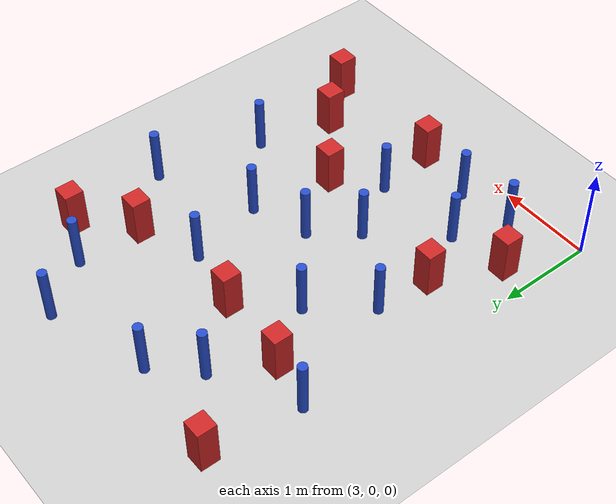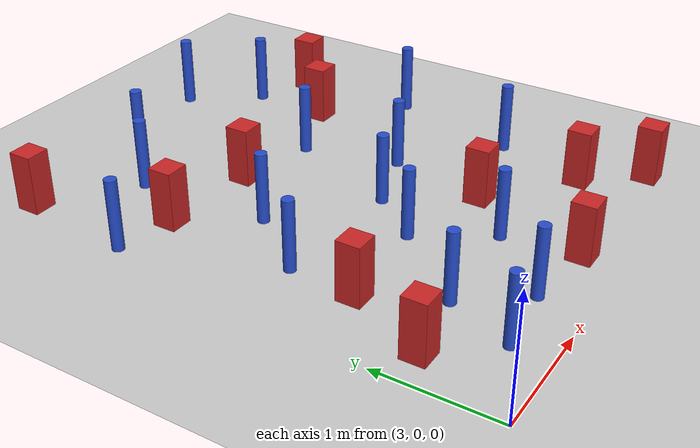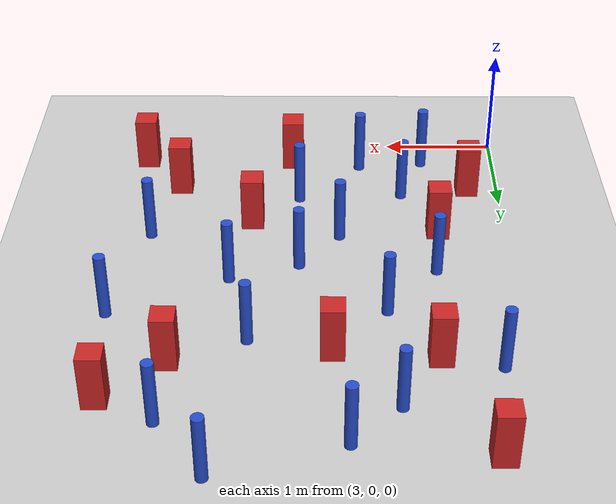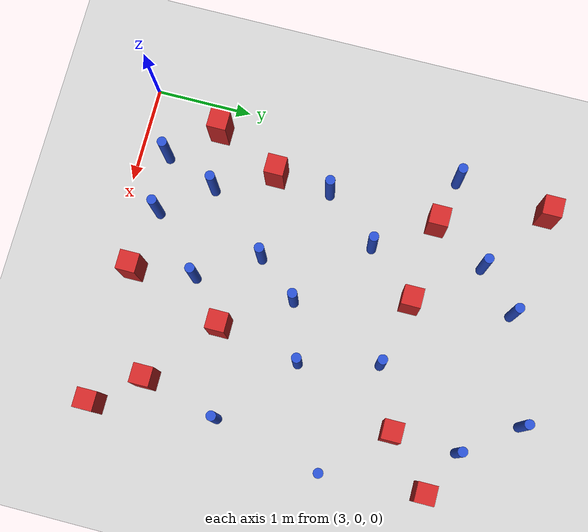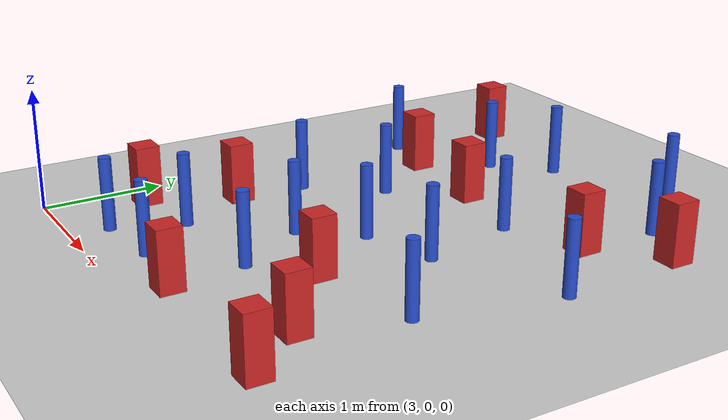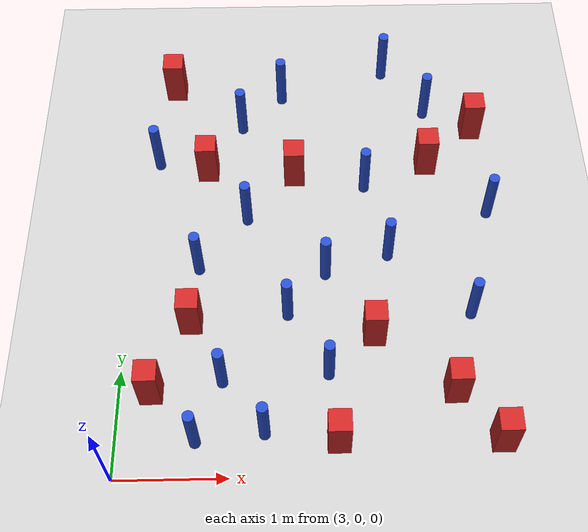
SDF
<sdf version="1.6">
 <world name="default">
  <model name="ground_plane">
   <static>1</static>
   <link name="link">
    <collision name="collision">
     <geometry><plane><normal>0 0 1</normal><size>100 100</size></plane></geometry>
     <surface><friction><ode><mu>100</mu><mu2>50</mu2></ode></friction></surface>
    </collision>
    <visual name="visual">
     <cast_shadows>0</cast_shadows>
     <geometry><plane><normal>0 0 1</normal><size>100 100</size></plane></geometry>
     <material>
      <ambient>1.0 1.0 1.0 1.0</ambient>
      <diffuse>0.8 0.8 0.8 1.0</diffuse>
      <specular>0.01 0.01 0.01 1.000000</specular>
     </material>
    </visual>
   </link>
  </model>
  <model name="pole_obstacle22">
   <static>true</static>
   <pose>4.44462462804 4.13934185821 -9.47619616065e-06 5.49618799737e-07 2.36310414037e-07 -1.55090534814e-07</pose>
   <link name="link">
    <pose>0 0 0.3 0 -0 0</pose>
    <inertial>
     <mass>1</mass>
     <inertia><ixx>0.145833</ixx><ixy>0</ixy><ixz>0</ixz><iyy>0.145833</iyy><iyz>0</iyz><izz>0.125</izz></inertia>
    </inertial>
    <collision name="collision">
     <geometry><cylinder><radius>0.05</radius><length>.6</length></cylinder></geometry>
    </collision>
    <visual name="visual">
     <geometry><cylinder><radius>0.05</radius><length>.6</length></cylinder></geometry>
     <material>
      <script><name>Gazebo/Blue</name><uri>file://media/materials/scripts/gazebo.material</uri></script>
     </material>
    </visual>
   </link>
  </model>
  <model name="pole_obstacle26">
   <static>true</static>
   <pose>5.51467032966 4.46958192493 -9.47619616065e-06 5.49618799737e-07 2.36310414037e-07 -1.55090534814e-07</pose>
   <link name="link">
    <pose>0 0 0.3 0 -0 0</pose>
    <inertial>
     <mass>1</mass>
     <inertia><ixx>0.145833</ixx><ixy>0</ixy><ixz>0</ixz><iyy>0.145833</iyy><iyz>0</iyz><izz>0.125</izz></inertia>
    </inertial>
    <collision name="collision">
     <geometry><cylinder><radius>0.05</radius><length>.6</length></cylinder></geometry>
    </collision>
    <visual name="visual">
     <geometry><cylinder><radius>0.05</radius><length>.6</length></cylinder></geometry>
     <material>
      <script><name>Gazebo/Blue</name><uri>file://media/materials/scripts/gazebo.material</uri></script>
     </material>
    </visual>
   </link>
  </model>
  <model name="pole_obstacle33">
   <static>true</static>
   <pose>5.92267457255 3.91372418321 -9.47619616065e-06 5.49618799738e-07 2.36310414051e-07 -1.55090534805e-07</pose>
   <link name="link">
    <pose>0 0 0.3 0 -0 0</pose>
    <inertial>
     <mass>1</mass>
     <inertia><ixx>0.145833</ixx><ixy>0</ixy><ixz>0</ixz><iyy>0.145833</iyy><iyz>0</iyz><izz>0.125</izz></inertia>
    </inertial>
    <collision name="collision">
     <geometry><cylinder><radius>0.05</radius><length>.6</length></cylinder></geometry>
    </collision>
    <visual name="visual">
     <geometry><cylinder><radius>0.05</radius><length>.6</length></cylinder></geometry>
     <material>
      <script><name>Gazebo/Blue</name><uri>file://media/materials/scripts/gazebo.material</uri></script>
     </material>
    </visual>
   </link>
  </model>
  <model name="pole_obstacle39">
   <static>true</static>
   <pose>4.0408346083 3.74370026757 -9.47619616065e-06 5.49618799737e-07 2.36310414057e-07 -1.55090534802e-07</pose>
   <link name="link">
    <pose>0 0 0.3 0 -0 0</pose>
    <inertial>
     <mass>1</mass>
     <inertia><ixx>0.145833</ixx><ixy>0</ixy><ixz>0</ixz><iyy>0.145833</iyy><iyz>0</iyz><izz>0.125</izz></inertia>
    </inertial>
    <collision name="collision">
     <geometry><cylinder><radius>0.05</radius><length>.6</length></cylinder></geometry>
    </collision>
    <visual name="visual">
     <geometry><cylinder><radius>0.05</radius><length>.6</length></cylinder></geometry>
     <material>
      <script><name>Gazebo/Blue</name><uri>file://media/materials/scripts/gazebo.material</uri></script>
     </material>
    </visual>
   </link>
  </model>
  <model name="square_post_obstacle43">
   <static>true</static>
   <pose>4.56991591105 3.11451603777 -6.11067671241e-07 -5.50515727128e-06 -8.79689657224e-07 2.37013304536e-05</pose>
   <link name="link">
    <pose>0 0 0.25 0 -0 0</pose>
    <inertial>
     <mass>100</mass>
     <inertia>
      <ixx>0.166667</ixx>
      <ixy>0</ixy>
      <ixz>0</ixz>
      <iyy>0.166667</iyy>
      <iyz>0</iyz>
      <izz>0.166667</izz>
     </inertia>
    </inertial>
    <collision name="collision"><geometry><box><size>.2 .2 .5</size></box></geometry></collision>
    <visual name="visual">
     <geometry><box><size>.2 .2 .5</size></box></geometry>
     <material>
      <script><name>Gazebo/Red</name><uri>file://media/materials/scripts/gazebo.material</uri></script>
     </material>
    </visual>
   </link>
  </model>
  <model name="square_post_obstacle47">
   <static>true</static>
   <pose>3.29083783248 0.779698672966 -6.11067671241e-07 -5.50515727128e-06 -8.79689657224e-07 2.37013304536e-05</pose>
   <link name="link">
    <pose>0 0 0.25 0 -0 0</pose>
    <inertial>
     <mass>100</mass>
     <inertia>
      <ixx>0.166667</ixx>
      <ixy>0</ixy>
      <ixz>0</ixz>
      <iyy>0.166667</iyy>
      <iyz>0</iyz>
      <izz>0.166667</izz>
     </inertia>
    </inertial>
    <collision name="collision"><geometry><box><size>.2 .2 .5</size></box></geometry></collision>
    <visual name="visual">
     <geometry><box><size>.2 .2 .5</size></box></geometry>
     <material>
      <script><name>Gazebo/Red</name><uri>file://media/materials/scripts/gazebo.material</uri></script>
     </material>
    </visual>
   </link>
  </model>
  <model name="square_post_obstacle72">
   <static>true</static>
   <pose>4.92912573434 0.302919939772 -6.11067671241e-07 -5.50515727128e-06 -8.79689657224e-07 2.37013304536e-05</pose>
   <link name="link">
    <pose>0 0 0.25 0 -0 0</pose>
    <inertial>
     <mass>100</mass>
     <inertia>
      <ixx>0.166667</ixx>
      <ixy>0</ixy>
      <ixz>0</ixz>
      <iyy>0.166667</iyy>
      <iyz>0</iyz>
      <izz>0.166667</izz>
     </inertia>
    </inertial>
    <collision name="collision"><geometry><box><size>.2 .2 .5</size></box></geometry></collision>
    <visual name="visual">
     <geometry><box><size>.2 .2 .5</size></box></geometry>
     <material>
      <script><name>Gazebo/Red</name><uri>file://media/materials/scripts/gazebo.material</uri></script>
     </material>
    </visual>
   </link>
  </model>
  <model name="pole_obstacle80">
   <static>true</static>
   <pose>6.45289074793 2.63987264285 -9.47619616065e-06 5.49618799738e-07 2.36310414051e-07 -1.55090534805e-07</pose>
   <link name="link">
    <pose>0 0 0.3 0 -0 0</pose>
    <inertial>
     <mass>1</mass>
     <inertia><ixx>0.145833</ixx><ixy>0</ixy><ixz>0</ixz><iyy>0.145833</iyy><iyz>0</iyz><izz>0.125</izz></inertia>
    </inertial>
    <collision name="collision">
     <geometry><cylinder><radius>0.05</radius><length>.6</length></cylinder></geometry>
    </collision>
    <visual name="visual">
     <geometry><cylinder><radius>0.05</radius><length>.6</length></cylinder></geometry>
     <material>
      <script><name>Gazebo/Blue</name><uri>file://media/materials/scripts/gazebo.material</uri></script>
     </material>
    </visual>
   </link>
  </model>
  <model name="square_post_obstacle86">
   <static>true</static>
   <pose>3.70826879592 3.18764989912 -6.11067671241e-07 -5.50515727128e-06 -8.79689657224e-07 2.37013304536e-05</pose>
   <link name="link">
    <pose>0 0 0.25 0 -0 0</pose>
    <inertial>
     <mass>100</mass>
     <inertia>
      <ixx>0.166667</ixx>
      <ixy>0</ixy>
      <ixz>0</ixz>
      <iyy>0.166667</iyy>
      <iyz>0</iyz>
      <izz>0.166667</izz>
     </inertia>
    </inertial>
    <collision name="collision"><geometry><box><size>.2 .2 .5</size></box></geometry></collision>
    <visual name="visual">
     <geometry><box><size>.2 .2 .5</size></box></geometry>
     <material>
      <script><name>Gazebo/Red</name><uri>file://media/materials/scripts/gazebo.material</uri></script>
     </material>
    </visual>
   </link>
  </model>
  <model name="pole_obstacle99">
   <static>true</static>
   <pose>4.49547687015 1.53703083934 -9.47619616065e-06 5.49618799738e-07 2.36310414071e-07 -1.55090534796e-07</pose>
   <link name="link">
    <pose>0 0 0.3 0 -0 0</pose>
    <inertial>
     <mass>1</mass>
     <inertia><ixx>0.145833</ixx><ixy>0</ixy><ixz>0</ixz><iyy>0.145833</iyy><iyz>0</iyz><izz>0.125</izz></inertia>
    </inertial>
    <collision name="collision">
     <geometry><cylinder><radius>0.05</radius><length>.6</length></cylinder></geometry>
    </collision>
    <visual name="visual">
     <geometry><cylinder><radius>0.05</radius><length>.6</length></cylinder></geometry>
     <material>
      <script><name>Gazebo/Blue</name><uri>file://media/materials/scripts/gazebo.material</uri></script>
     </material>
    </visual>
   </link>
  </model>
  <model name="pole_obstacle102">
   <static>true</static>
   <pose>3.69176325658 0.317272816211 -9.47619616065e-06 5.49618799738e-07 2.36310414074e-07 -1.55090534794e-07</pose>
   <link name="link">
    <pose>0 0 0.3 0 -0 0</pose>
    <inertial>
     <mass>1</mass>
     <inertia><ixx>0.145833</ixx><ixy>0</ixy><ixz>0</ixz><iyy>0.145833</iyy><iyz>0</iyz><izz>0.125</izz></inertia>
    </inertial>
    <collision name="collision">
     <geometry><cylinder><radius>0.05</radius><length>.6</length></cylinder></geometry>
    </collision>
    <visual name="visual">
     <geometry><cylinder><radius>0.05</radius><length>.6</length></cylinder></geometry>
     <material>
      <script><name>Gazebo/Blue</name><uri>file://media/materials/scripts/gazebo.material</uri></script>
     </material>
    </visual>
   </link>
  </model>
  <model name="pole_obstacle108">
   <static>true</static>
   <pose>5.2613600659 2.97364509109 -9.47619616065e-06 5.49618799738e-07 2.36310414051e-07 -1.55090534805e-07</pose>
   <link name="link">
    <pose>0 0 0.3 0 -0 0</pose>
    <inertial>
     <mass>1</mass>
     <inertia><ixx>0.145833</ixx><ixy>0</ixy><ixz>0</ixz><iyy>0.145833</iyy><iyz>0</iyz><izz>0.125</izz></inertia>
    </inertial>
    <collision name="collision">
     <geometry><cylinder><radius>0.05</radius><length>.6</length></cylinder></geometry>
    </collision>
    <visual name="visual">
     <geometry><cylinder><radius>0.05</radius><length>.6</length></cylinder></geometry>
     <material>
      <script><name>Gazebo/Blue</name><uri>file://media/materials/scripts/gazebo.material</uri></script>
     </material>
    </visual>
   </link>
  </model>
  <model name="square_post_obstacle104">
   <static>true</static>
   <pose>3.33541497234 4.26242279569 -6.11067671241e-07 -5.50515727128e-06 -8.79689657224e-07 2.37013304536e-05</pose>
   <link name="link">
    <pose>0 0 0.25 0 -0 0</pose>
    <inertial>
     <mass>100</mass>
     <inertia>
      <ixx>0.166667</ixx>
      <ixy>0</ixy>
      <ixz>0</ixz>
      <iyy>0.166667</iyy>
      <iyz>0</iyz>
      <izz>0.166667</izz>
     </inertia>
    </inertial>
    <collision name="collision"><geometry><box><size>.2 .2 .5</size></box></geometry></collision>
    <visual name="visual">
     <geometry><box><size>.2 .2 .5</size></box></geometry>
     <material>
      <script><name>Gazebo/Red</name><uri>file://media/materials/scripts/gazebo.material</uri></script>
     </material>
    </visual>
   </link>
  </model>
  <model name="pole_obstacle124">
   <static>true</static>
   <pose>5.45216487929 2.16566190846 -9.47619616065e-06 5.49618799738e-07 2.36310414051e-07 -1.55090534805e-07</pose>
   <link name="link">
    <pose>0 0 0.3 0 -0 0</pose>
    <inertial>
     <mass>1</mass>
     <inertia><ixx>0.145833</ixx><ixy>0</ixy><ixz>0</ixz><iyy>0.145833</iyy><iyz>0</iyz><izz>0.125</izz></inertia>
    </inertial>
    <collision name="collision">
     <geometry><cylinder><radius>0.05</radius><length>.6</length></cylinder></geometry>
    </collision>
    <visual name="visual">
     <geometry><cylinder><radius>0.05</radius><length>.6</length></cylinder></geometry>
     <material>
      <script><name>Gazebo/Blue</name><uri>file://media/materials/scripts/gazebo.material</uri></script>
     </material>
    </visual>
   </link>
  </model>
  <model name="pole_obstacle129">
   <static>true</static>
   <pose>3.21252405138 3.29230926636 -9.47619616065e-06 5.49618799737e-07 2.36310414051e-07 -1.55090534807e-07</pose>
   <link name="link">
    <pose>0 0 0.3 0 -0 0</pose>
    <inertial>
     <mass>1</mass>
     <inertia><ixx>0.145833</ixx><ixy>0</ixy><ixz>0</ixz><iyy>0.145833</iyy><iyz>0</iyz><izz>0.125</izz></inertia>
    </inertial>
    <collision name="collision">
     <geometry><cylinder><radius>0.05</radius><length>.6</length></cylinder></geometry>
    </collision>
    <visual name="visual">
     <geometry><cylinder><radius>0.05</radius><length>.6</length></cylinder></geometry>
     <material>
      <script><name>Gazebo/Blue</name><uri>file://media/materials/scripts/gazebo.material</uri></script>
     </material>
    </visual>
   </link>
  </model>
  <model name="square_post_obstacle121">
   <static>true</static>
   <pose>3.61079938093 1.46418794623 -6.11067671241e-07 -5.50515727128e-06 -8.79689657224e-07 2.37013304536e-05</pose>
   <link name="link">
    <pose>0 0 0.25 0 -0 0</pose>
    <inertial>
     <mass>100</mass>
     <inertia>
      <ixx>0.166667</ixx>
      <ixy>0</ixy>
      <ixz>0</ixz>
      <iyy>0.166667</iyy>
      <iyz>0</iyz>
      <izz>0.166667</izz>
     </inertia>
    </inertial>
    <collision name="collision"><geometry><box><size>.2 .2 .5</size></box></geometry></collision>
    <visual name="visual">
     <geometry><box><size>.2 .2 .5</size></box></geometry>
     <material>
      <script><name>Gazebo/Red</name><uri>file://media/materials/scripts/gazebo.material</uri></script>
     </material>
    </visual>
   </link>
  </model>
  <model name="pole_obstacle142">
   <static>true</static>
   <pose>3.91156503805 0.874002899609 -9.47619616065e-06 5.49618799738e-07 2.36310414075e-07 -1.55090534793e-07</pose>
   <link name="link">
    <pose>0 0 0.3 0 -0 0</pose>
    <inertial>
     <mass>1</mass>
     <inertia><ixx>0.145833</ixx><ixy>0</ixy><ixz>0</ixz><iyy>0.145833</iyy><iyz>0</iyz><izz>0.125</izz></inertia>
    </inertial>
    <collision name="collision">
     <geometry><cylinder><radius>0.05</radius><length>.6</length></cylinder></geometry>
    </collision>
    <visual name="visual">
     <geometry><cylinder><radius>0.05</radius><length>.6</length></cylinder></geometry>
     <material>
      <script><name>Gazebo/Blue</name><uri>file://media/materials/scripts/gazebo.material</uri></script>
     </material>
    </visual>
   </link>
  </model>
  <model name="square_post_obstacle132">
   <static>true</static>
   <pose>5.88919421658 3.23397509613 -6.11067671241e-07 -5.50515727128e-06 -8.79689657224e-07 2.37013304536e-05</pose>
   <link name="link">
    <pose>0 0 0.25 0 -0 0</pose>
    <inertial>
     <mass>100</mass>
     <inertia>
      <ixx>0.166667</ixx>
      <ixy>0</ixy>
      <ixz>0</ixz>
      <iyy>0.166667</iyy>
      <iyz>0</iyz>
      <izz>0.166667</izz>
     </inertia>
    </inertial>
    <collision name="collision"><geometry><box><size>.2 .2 .5</size></box></geometry></collision>
    <visual name="visual">
     <geometry><box><size>.2 .2 .5</size></box></geometry>
     <material>
      <script><name>Gazebo/Red</name><uri>file://media/materials/scripts/gazebo.material</uri></script>
     </material>
    </visual>
   </link>
  </model>
  <model name="square_post_obstacle136">
   <static>true</static>
   <pose>5.28022903943 1.31255972653 -6.11067671241e-07 -5.50515727128e-06 -8.79689657224e-07 2.37013304536e-05</pose>
   <link name="link">
    <pose>0 0 0.25 0 -0 0</pose>
    <inertial>
     <mass>100</mass>
     <inertia>
      <ixx>0.166667</ixx>
      <ixy>0</ixy>
      <ixz>0</ixz>
      <iyy>0.166667</iyy>
      <iyz>0</iyz>
      <izz>0.166667</izz>
     </inertia>
    </inertial>
    <collision name="collision"><geometry><box><size>.2 .2 .5</size></box></geometry></collision>
    <visual name="visual">
     <geometry><box><size>.2 .2 .5</size></box></geometry>
     <material>
      <script><name>Gazebo/Red</name><uri>file://media/materials/scripts/gazebo.material</uri></script>
     </material>
    </visual>
   </link>
  </model>
  <model name="pole_obstacle175">
   <static>true</static>
   <pose>4.10727523658 2.60019848755 -9.47619616065e-06 5.49618799738e-07 2.36310414051e-07 -1.55090534805e-07</pose>
   <link name="link">
    <pose>0 0 0.3 0 -0 0</pose>
    <inertial>
     <mass>1</mass>
     <inertia><ixx>0.145833</ixx><ixy>0</ixy><ixz>0</ixz><iyy>0.145833</iyy><iyz>0</iyz><izz>0.125</izz></inertia>
    </inertial>
    <collision name="collision">
     <geometry><cylinder><radius>0.05</radius><length>.6</length></cylinder></geometry>
    </collision>
    <visual name="visual">
     <geometry><cylinder><radius>0.05</radius><length>.6</length></cylinder></geometry>
     <material>
      <script><name>Gazebo/Blue</name><uri>file://media/materials/scripts/gazebo.material</uri></script>
     </material>
    </visual>
   </link>
  </model>
  <model name="pole_obstacle179">
   <static>true</static>
   <pose>4.85219035946 1.96696996839 -9.47619616065e-06 5.49618799737e-07 2.36310414075e-07 -1.55090534793e-07</pose>
   <link name="link">
    <pose>0 0 0.3 0 -0 0</pose>
    <inertial>
     <mass>1</mass>
     <inertia><ixx>0.145833</ixx><ixy>0</ixy><ixz>0</ixz><iyy>0.145833</iyy><iyz>0</iyz><izz>0.125</izz></inertia>
    </inertial>
    <collision name="collision">
     <geometry><cylinder><radius>0.05</radius><length>.6</length></cylinder></geometry>
    </collision>
    <visual name="visual">
     <geometry><cylinder><radius>0.05</radius><length>.6</length></cylinder></geometry>
     <material>
      <script><name>Gazebo/Blue</name><uri>file://media/materials/scripts/gazebo.material</uri></script>
     </material>
    </visual>
   </link>
  </model>
  <model name="pole_obstacle186">
   <static>true</static>
   <pose>3.65883767363 2.04408064652 -9.47619616065e-06 5.49618799737e-07 2.36310414066e-07 -1.55090534797e-07</pose>
   <link name="link">
    <pose>0 0 0.3 0 -0 0</pose>
    <inertial>
     <mass>1</mass>
     <inertia><ixx>0.145833</ixx><ixy>0</ixy><ixz>0</ixz><iyy>0.145833</iyy><iyz>0</iyz><izz>0.125</izz></inertia>
    </inertial>
    <collision name="collision">
     <geometry><cylinder><radius>0.05</radius><length>.6</length></cylinder></geometry>
    </collision>
    <visual name="visual">
     <geometry><cylinder><radius>0.05</radius><length>.6</length></cylinder></geometry>
     <material>
      <script><name>Gazebo/Blue</name><uri>file://media/materials/scripts/gazebo.material</uri></script>
     </material>
    </visual>
   </link>
  </model>
  <model name="square_post_obstacle179">
   <static>true</static>
   <pose>6.33370451504 0.285923487393 -6.11067671241e-07 -5.50515727128e-06 -8.79689657224e-07 2.37013304536e-05</pose>
   <link name="link">
    <pose>0 0 0.25 0 -0 0</pose>
    <inertial>
     <mass>100</mass>
     <inertia>
      <ixx>0.166667</ixx>
      <ixy>0</ixy>
      <ixz>0</ixz>
      <iyy>0.166667</iyy>
      <iyz>0</iyz>
      <izz>0.166667</izz>
     </inertia>
    </inertial>
    <collision name="collision"><geometry><box><size>.2 .2 .5</size></box></geometry></collision>
    <visual name="visual">
     <geometry><box><size>.2 .2 .5</size></box></geometry>
     <material>
      <script><name>Gazebo/Red</name><uri>file://media/materials/scripts/gazebo.material</uri></script>
     </material>
    </visual>
   </link>
  </model>
  <model name="square_post_obstacle181">
   <static>true</static>
   <pose>6.38586840309 3.67914417136 -6.11067671241e-07 -5.50515727128e-06 -8.79689657224e-07 2.37013304536e-05</pose>
   <link name="link">
    <pose>0 0 0.25 0 -0 0</pose>
    <inertial>
     <mass>100</mass>
     <inertia>
      <ixx>0.166667</ixx>
      <ixy>0</ixy>
      <ixz>0</ixz>
      <iyy>0.166667</iyy>
      <iyz>0</iyz>
      <izz>0.166667</izz>
     </inertia>
    </inertial>
    <collision name="collision"><geometry><box><size>.2 .2 .5</size></box></geometry></collision>
    <visual name="visual">
     <geometry><box><size>.2 .2 .5</size></box></geometry>
     <material>
      <script><name>Gazebo/Red</name><uri>file://media/materials/scripts/gazebo.material</uri></script>
     </material>
    </visual>
   </link>
  </model>
  <model name="pole_obstacle199">
   <static>true</static>
   <pose>6.18813755895 1.51977489714 -9.47619616065e-06 5.49618799738e-07 2.36310414071e-07 -1.55090534796e-07</pose>
   <link name="link">
    <pose>0 0 0.3 0 -0 0</pose>
    <inertial>
     <mass>1</mass>
     <inertia><ixx>0.145833</ixx><ixy>0</ixy><ixz>0</ixz><iyy>0.145833</iyy><iyz>0</iyz><izz>0.125</izz></inertia>
    </inertial>
    <collision name="collision">
     <geometry><cylinder><radius>0.05</radius><length>.6</length></cylinder></geometry>
    </collision>
    <visual name="visual">
     <geometry><cylinder><radius>0.05</radius><length>.6</length></cylinder></geometry>
     <material>
      <script><name>Gazebo/Blue</name><uri>file://media/materials/scripts/gazebo.material</uri></script>
     </material>
    </visual>
   </link>
  </model>
  <model name="pole_obstacle209">
   <static>true</static>
   <pose>4.2908516688 0.383391621498 -9.47619616065e-06 5.49618799737e-07 2.36310414057e-07 -1.55090534802e-07</pose>
   <link name="link">
    <pose>0 0 0.3 0 -0 0</pose>
    <inertial>
     <mass>1</mass>
     <inertia><ixx>0.145833</ixx><ixy>0</ixy><ixz>0</ixz><iyy>0.145833</iyy><iyz>0</iyz><izz>0.125</izz></inertia>
    </inertial>
    <collision name="collision">
     <geometry><cylinder><radius>0.05</radius><length>.6</length></cylinder></geometry>
    </collision>
    <visual name="visual">
     <geometry><cylinder><radius>0.05</radius><length>.6</length></cylinder></geometry>
     <material>
      <script><name>Gazebo/Blue</name><uri>file://media/materials/scripts/gazebo.material</uri></script>
     </material>
    </visual>
   </link>
  </model>
  <model name="pole_obstacle214">
   <static>true</static>
   <pose>4.85882539874 0.93349492389 -9.47619616065e-06 5.49618799737e-07 2.36310414061e-07 -1.550905348e-07</pose>
   <link name="link">
    <pose>0 0 0.3 0 -0 0</pose>
    <inertial>
     <mass>1</mass>
     <inertia><ixx>0.145833</ixx><ixy>0</ixy><ixz>0</ixz><iyy>0.145833</iyy><iyz>0</iyz><izz>0.125</izz></inertia>
    </inertial>
    <collision name="collision">
     <geometry><cylinder><radius>0.05</radius><length>.6</length></cylinder></geometry>
    </collision>
    <visual name="visual">
     <geometry><cylinder><radius>0.05</radius><length>.6</length></cylinder></geometry>
     <material>
      <script><name>Gazebo/Blue</name><uri>file://media/materials/scripts/gazebo.material</uri></script>
     </material>
    </visual>
   </link>
  </model>
  <model name="square_post_obstacle227">
   <static>true</static>
   <pose>5.9728999502 0.745226976878 -6.11067671241e-07 -5.50515727128e-06 -8.79689657224e-07 2.37013304536e-05</pose>
   <link name="link">
    <pose>0 0 0.25 0 -0 0</pose>
    <inertial>
     <mass>100</mass>
     <inertia>
      <ixx>0.166667</ixx>
      <ixy>0</ixy>
      <ixz>0</ixz>
      <iyy>0.166667</iyy>
      <iyz>0</iyz>
      <izz>0.166667</izz>
     </inertia>
    </inertial>
    <collision name="collision"><geometry><box><size>.2 .2 .5</size></box></geometry></collision>
    <visual name="visual">
     <geometry><box><size>.2 .2 .5</size></box></geometry>
     <material>
      <script><name>Gazebo/Red</name><uri>file://media/materials/scripts/gazebo.material</uri></script>
     </material>
    </visual>
   </link>
  </model>
 </world>
</sdf>
